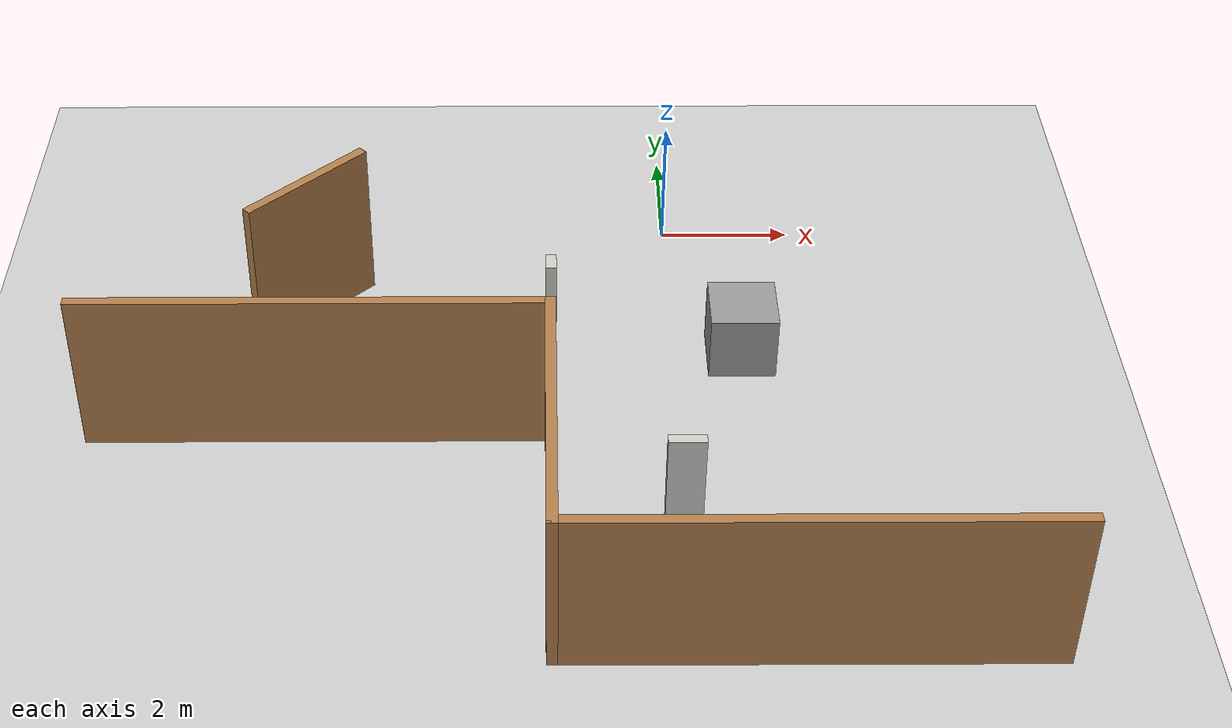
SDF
<sdf version="1.7">
 <world name="default">
  <model name="ground_plane">
   <static>1</static>
   <link name="link">
    <collision name="collision">
     <geometry><plane><normal>0 0 1</normal><size>100 100</size></plane></geometry>
     <surface>
      <contact><collide_bitmask>65535</collide_bitmask></contact>
      <friction><ode><mu>100</mu><mu2>50</mu2></ode></friction>
     </surface>
    </collision>
    <visual name="visual">
     <cast_shadows>0</cast_shadows>
     <geometry><plane><normal>0 0 1</normal><size>100 100</size></plane></geometry>
     <material>
      <script><uri>file://media/materials/scripts/gazebo.material</uri><name>Gazebo/Grey</name></script>
     </material>
    </visual>
   </link>
  </model>
  <model name="mundo_normal1">
   <pose>-1.83298 -2.00796 0 0 -0 0</pose>
   <link name="Wall_11">
    <collision name="Wall_11_Collision">
     <geometry><box><size>2.25 0.15 2.5</size></box></geometry>
     <pose>0 0 1.25 0 -0 0</pose>
    </collision>
    <visual name="Wall_11_Visual">
     <pose>0 0 1.25 0 -0 0</pose>
     <geometry><box><size>2.25 0.15 2.5</size></box></geometry>
     <material>
      <script><uri>file://media/materials/scripts/gazebo.material</uri><name>Gazebo/Wood</name></script>
      <ambient>1 1 1 1</ambient>
     </material>
     <meta><layer>0</layer></meta>
    </visual>
    <pose>-3.59246 -0.042462 0 0 -0 -2.35619</pose>
   </link>
   <link name="Wall_13">
    <collision name="Wall_13_Collision">
     <geometry><box><size>0.5 0.15 2.5</size></box></geometry>
     <pose>0 0 1.25 0 -0 0</pose>
    </collision>
    <visual name="Wall_13_Visual">
     <pose>0 0 1.25 0 -0 0</pose>
     <geometry><box><size>0.5 0.15 2.5</size></box></geometry>
     <material>
      <script><uri>file://media/materials/scripts/gazebo.material</uri><name>Gazebo/CeilingTiled</name></script>
      <ambient>1 1 1 1</ambient>
     </material>
     <meta><layer>0</layer></meta>
    </visual>
    <pose>1.7247 -5.83749 0 0 -0 0</pose>
   </link>
   <link name="Wall_16">
    <collision name="Wall_16_Collision">
     <geometry><box><size>0.3 0.15 2.5</size></box></geometry>
     <pose>0 0 1.25 0 -0 0</pose>
    </collision>
    <visual name="Wall_16_Visual">
     <pose>0 0 1.25 0 -0 0</pose>
     <geometry><box><size>0.3 0.15 2.5</size></box></geometry>
     <material>
      <script><uri>file://media/materials/scripts/gazebo.material</uri><name>Gazebo/CeilingTiled</name></script>
      <ambient>1 1 1 1</ambient>
     </material>
     <meta><layer>0</layer></meta>
    </visual>
    <pose>0.012384 -2.06921 0 0 -0 -1.5708</pose>
   </link>
   <link name="Wall_3">
    <collision name="Wall_3_Collision">
     <geometry><box><size>6.75 0.15 2.5</size></box></geometry>
     <pose>0 0 1.25 0 -0 0</pose>
    </collision>
    <visual name="Wall_3_Visual">
     <pose>0 0 1.25 0 -0 0</pose>
     <geometry><box><size>6.75 0.15 2.5</size></box></geometry>
     <material>
      <script><uri>file://media/materials/scripts/gazebo.material</uri><name>Gazebo/Wood</name></script>
      <ambient>1 1 1 1</ambient>
     </material>
     <meta><layer>0</layer></meta>
    </visual>
    <pose>3.3 -7.3 0 0 -0 3.14159</pose>
   </link>
   <link name="Wall_6">
    <collision name="Wall_6_Collision">
     <geometry><box><size>4.5 0.15 2.5</size></box></geometry>
     <pose>0 0 1.25 0 -0 0</pose>
    </collision>
    <visual name="Wall_6_Visual">
     <pose>0 0 1.25 0 -0 0</pose>
     <geometry><box><size>4.5 0.15 2.5</size></box></geometry>
     <material>
      <script><uri>file://media/materials/scripts/gazebo.material</uri><name>Gazebo/Wood</name></script>
      <ambient>1 1 1 1</ambient>
     </material>
     <meta><layer>0</layer></meta>
    </visual>
    <pose>0 -5.125 0 0 -0 1.5708</pose>
   </link>
   <link name="Wall_7">
    <collision name="Wall_7_Collision">
     <geometry><box><size>6.75 0.15 2.5</size></box></geometry>
     <pose>0 0 1.25 0 -0 0</pose>
    </collision>
    <visual name="Wall_7_Visual">
     <pose>0 0 1.25 0 -0 0</pose>
     <geometry><box><size>6.75 0.15 2.5</size></box></geometry>
     <material>
      <script><uri>file://media/materials/scripts/gazebo.material</uri><name>Gazebo/Wood</name></script>
      <ambient>1 1 1 1</ambient>
     </material>
     <meta><layer>0</layer></meta>
    </visual>
    <pose>-3.3 -2.95 0 0 -0 3.14159</pose>
   </link>
   <static>1</static>
  </model>
  <model name="unit_box">
   <pose>1.02922 -3.0797 0.5 0 -0 0</pose>
   <link name="link">
    <inertial>
     <mass>1</mass>
     <inertia>
      <ixx>0.166667</ixx>
      <ixy>0</ixy>
      <ixz>0</ixz>
      <iyy>0.166667</iyy>
      <iyz>0</iyz>
      <izz>0.166667</izz>
     </inertia>
    </inertial>
    <collision name="collision"><geometry><box><size>1 1 1</size></box></geometry></collision>
    <visual name="visual">
     <geometry><box><size>1 1 1</size></box></geometry>
     <material>
      <script><name>Gazebo/Grey</name><uri>file://media/materials/scripts/gazebo.material</uri></script>
     </material>
    </visual>
   </link>
  </model>
 </world>
</sdf>
